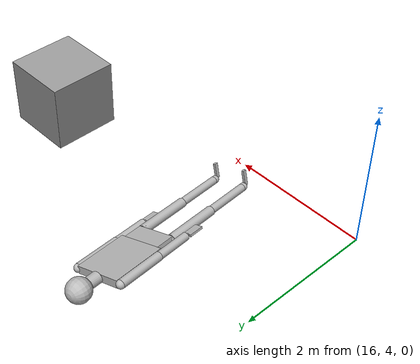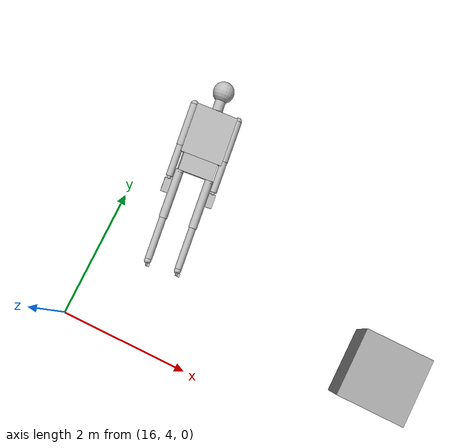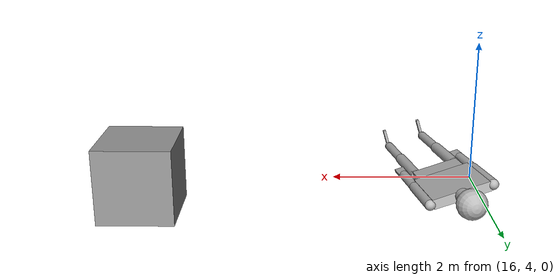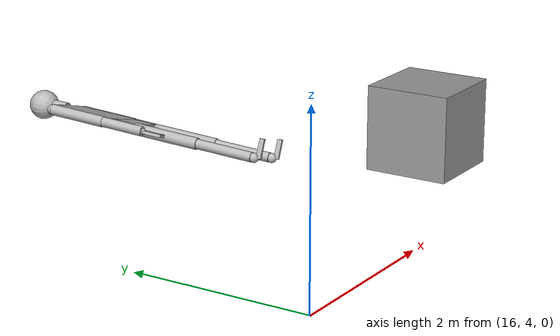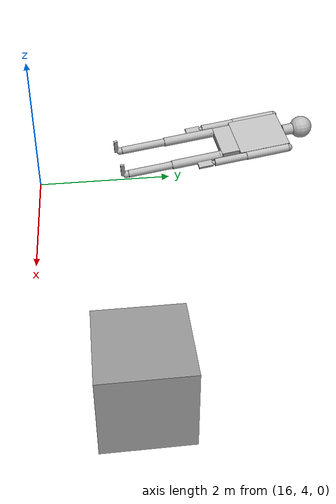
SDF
<sdf version="1.7">
 <world name="world_demo">
  <model name="ground_plane">
   <static>1</static>
   <link name="link">
    <collision name="collision">
     <geometry><plane><normal>0 0 1</normal><size>1 1</size></plane></geometry>
    </collision>
    <inertial>
     <mass>1</mass>
     <inertia><ixx>1</ixx><ixy>0</ixy><ixz>0</ixz><iyy>1</iyy><iyz>0</iyz><izz>1</izz></inertia>
    </inertial>
   </link>
  </model>
  <model name="unit_box_3">
   <pose>20.5574 5.20717 0.49907 -0.0001 -0 -1e-06</pose>
   <link name="link">
    <inertial>
     <mass>1</mass>
     <inertia>
      <ixx>0.166667</ixx>
      <ixy>0</ixy>
      <ixz>0</ixz>
      <iyy>0.166667</iyy>
      <iyz>0</iyz>
      <izz>0.166667</izz>
     </inertia>
    </inertial>
    <collision name="collision"><geometry><box><size>1 1 1</size></box></geometry></collision>
    <visual name="visual">
     <geometry><box><size>1 1 1</size></box></geometry>
     <material>
      <script><name>Gazebo/Grey</name><uri>file://media/materials/scripts/gazebo.material</uri></script>
     </material>
    </visual>
   </link>
  </model>
  <model name="ragdoll_clone_0">
   <pose>16.9861 6.55505 1.11326 -1.25694 -1.2719 -0.184158</pose>
   <link name="hip">
    <inertial>
     <inertia><ixx>0.1</ixx><ixy>0</ixy><ixz>0</ixz><iyy>0.1</iyy><iyz>0</iyz><izz>0.1</izz></inertia>
     <mass>10</mass>
    </inertial>
    <collision name="hip_geom">
     <pose>0 0 0.125 0 -0 0</pose>
     <geometry><box><size>0.1 0.5 0.25</size></box></geometry>
     <surface>
      <friction><ode><mu>-1</mu><mu2>-1</mu2><fdir1>0 0 0</fdir1><slip1>0</slip1><slip2>0</slip2></ode></friction>
      <bounce><restitution_coefficient>0</restitution_coefficient><threshold>100000</threshold></bounce>
      <contact>
       <ode>
        <soft_cfm>0</soft_cfm>
        <soft_erp>0.2</soft_erp>
        <kp>1e+12</kp>
        <kd>1</kd>
        <max_vel>0</max_vel>
        <min_depth>0.001</min_depth>
       </ode>
      </contact>
     </surface>
    </collision>
    <visual name="hip_geom_visual">
     <pose>0 0 0.125 0 -0 0</pose>
     <geometry><box><size>0.1 0.5 0.25</size></box></geometry>
    </visual>
    <gravity>0</gravity>
   </link>
   <link name="l_thigh_pan">
    <pose>0 0.22 0 0 -0 0</pose>
    <inertial>
     <inertia><ixx>0.01</ixx><ixy>0</ixy><ixz>0</ixz><iyy>0.01</iyy><iyz>0</iyz><izz>0.01</izz></inertia>
     <mass>1</mass>
    </inertial>
    <collision name="l_thigh_pan_geom">
     <pose>0 0 -0.03 0 -0 0</pose>
     <geometry><sphere><radius>0.06</radius></sphere></geometry>
     <surface>
      <friction><ode><mu>-1</mu><mu2>-1</mu2><fdir1>0 0 0</fdir1><slip1>0</slip1><slip2>0</slip2></ode></friction>
      <bounce><restitution_coefficient>0</restitution_coefficient><threshold>100000</threshold></bounce>
      <contact>
       <ode>
        <soft_cfm>0</soft_cfm>
        <soft_erp>0.2</soft_erp>
        <kp>1e+12</kp>
        <kd>1</kd>
        <max_vel>0</max_vel>
        <min_depth>0.001</min_depth>
       </ode>
      </contact>
     </surface>
    </collision>
    <visual name="l_thigh_pan_geom_visual">
     <pose>0 0 -0.03 0 -0 0</pose>
     <geometry><sphere><radius>0.06</radius></sphere></geometry>
    </visual>
    <gravity>0</gravity>
   </link>
   <link name="l_thigh_lift">
    <pose>0 0.22 0 0 -0 0</pose>
    <inertial>
     <inertia><ixx>0.05</ixx><ixy>0</ixy><ixz>0</ixz><iyy>0.05</iyy><iyz>0</iyz><izz>0.05</izz></inertia>
     <mass>5</mass>
    </inertial>
    <collision name="l_thigh_lift_geom">
     <pose>0 0 -0.35 0 -0 0</pose>
     <geometry><cylinder><radius>0.06</radius><length>0.7</length></cylinder></geometry>
     <surface>
      <friction><ode><mu>-1</mu><mu2>-1</mu2><fdir1>0 0 0</fdir1><slip1>0</slip1><slip2>0</slip2></ode></friction>
      <bounce><restitution_coefficient>0</restitution_coefficient><threshold>100000</threshold></bounce>
      <contact>
       <ode>
        <soft_cfm>0</soft_cfm>
        <soft_erp>0.2</soft_erp>
        <kp>1e+12</kp>
        <kd>1</kd>
        <max_vel>0</max_vel>
        <min_depth>0.001</min_depth>
       </ode>
      </contact>
     </surface>
    </collision>
    <visual name="l_thigh_lift_geom_visual">
     <pose>0 0 -0.35 0 -0 0</pose>
     <geometry><cylinder><radius>0.06</radius><length>0.7</length></cylinder></geometry>
    </visual>
    <gravity>0</gravity>
   </link>
   <link name="l_calf">
    <pose>0 0.22 -0.7 0 -0 0</pose>
    <inertial>
     <inertia><ixx>0.02</ixx><ixy>0</ixy><ixz>0</ixz><iyy>0.02</iyy><iyz>0</iyz><izz>0.02</izz></inertia>
     <mass>2</mass>
    </inertial>
    <collision name="l_calf_geom">
     <pose>0 0 -0.3 0 -0 0</pose>
     <geometry><cylinder><radius>0.05</radius><length>0.6</length></cylinder></geometry>
     <surface>
      <friction><ode><mu>-1</mu><mu2>-1</mu2><fdir1>0 0 0</fdir1><slip1>0</slip1><slip2>0</slip2></ode></friction>
      <bounce><restitution_coefficient>0</restitution_coefficient><threshold>100000</threshold></bounce>
      <contact>
       <ode>
        <soft_cfm>0</soft_cfm>
        <soft_erp>0.2</soft_erp>
        <kp>1e+12</kp>
        <kd>1</kd>
        <max_vel>0</max_vel>
        <min_depth>0.001</min_depth>
       </ode>
      </contact>
     </surface>
    </collision>
    <visual name="l_calf_geom_visual">
     <pose>0 0 -0.3 0 -0 0</pose>
     <geometry><cylinder><radius>0.05</radius><length>0.6</length></cylinder></geometry>
    </visual>
    <gravity>0</gravity>
   </link>
   <link name="l_ankle">
    <pose>0 0.22 -1.325 0 -0 0</pose>
    <inertial>
     <inertia><ixx>0.01</ixx><ixy>0</ixy><ixz>0</ixz><iyy>0.01</iyy><iyz>0</iyz><izz>0.01</izz></inertia>
     <mass>1</mass>
    </inertial>
    <collision name="l_ankle_geom">
     <geometry><sphere><radius>0.05</radius></sphere></geometry>
     <surface>
      <friction><ode><mu>-1</mu><mu2>-1</mu2><fdir1>0 0 0</fdir1><slip1>0</slip1><slip2>0</slip2></ode></friction>
      <bounce><restitution_coefficient>0</restitution_coefficient><threshold>100000</threshold></bounce>
      <contact>
       <ode>
        <soft_cfm>0</soft_cfm>
        <soft_erp>0.2</soft_erp>
        <kp>1e+12</kp>
        <kd>1</kd>
        <max_vel>0</max_vel>
        <min_depth>0.001</min_depth>
       </ode>
      </contact>
     </surface>
    </collision>
    <visual name="l_ankle_geom_visual"><geometry><sphere><radius>0.05</radius></sphere></geometry></visual>
    <gravity>0</gravity>
   </link>
   <link name="l_foot">
    <pose>0 0.22 -1.35 0 -0 0</pose>
    <inertial>
     <pose>0.1 0 0 0 -0 0</pose>
     <inertia><ixx>0.01</ixx><ixy>0</ixy><ixz>0</ixz><iyy>0.01</iyy><iyz>0</iyz><izz>0.01</izz></inertia>
     <mass>1</mass>
    </inertial>
    <collision name="l_foot_geom">
     <pose>0.1 0 -0.025 0 -0 0</pose>
     <geometry><box><size>0.2 0.03 0.05</size></box></geometry>
     <surface>
      <friction><ode><mu>-1</mu><mu2>-1</mu2><fdir1>0 0 0</fdir1><slip1>0</slip1><slip2>0</slip2></ode></friction>
      <bounce><restitution_coefficient>0</restitution_coefficient><threshold>100000</threshold></bounce>
      <contact>
       <ode>
        <soft_cfm>0</soft_cfm>
        <soft_erp>0.2</soft_erp>
        <kp>1e+12</kp>
        <kd>1</kd>
        <max_vel>0</max_vel>
        <min_depth>0.001</min_depth>
       </ode>
      </contact>
     </surface>
    </collision>
    <visual name="l_foot_geom_visual">
     <pose>0.1 0 -0.025 0 -0 0</pose>
     <geometry><box><size>0.2 0.03 0.05</size></box></geometry>
    </visual>
   </link>
   <link name="r_thigh_pan">
    <pose>0 -0.22 0 0 -0 0</pose>
    <inertial>
     <inertia><ixx>0.01</ixx><ixy>0</ixy><ixz>0</ixz><iyy>0.01</iyy><iyz>0</iyz><izz>0.01</izz></inertia>
     <mass>1</mass>
    </inertial>
    <collision name="r_thigh_pan_geom">
     <pose>0 0 -0.03 0 -0 0</pose>
     <geometry><sphere><radius>0.06</radius></sphere></geometry>
     <surface>
      <friction><ode><mu>-1</mu><mu2>-1</mu2><fdir1>0 0 0</fdir1><slip1>0</slip1><slip2>0</slip2></ode></friction>
      <bounce><restitution_coefficient>0</restitution_coefficient><threshold>100000</threshold></bounce>
      <contact>
       <ode>
        <soft_cfm>0</soft_cfm>
        <soft_erp>0.2</soft_erp>
        <kp>1e+12</kp>
        <kd>1</kd>
        <max_vel>0</max_vel>
        <min_depth>0.001</min_depth>
       </ode>
      </contact>
     </surface>
    </collision>
    <visual name="r_thigh_pan_geom_visual">
     <pose>0 0 -0.03 0 -0 0</pose>
     <geometry><sphere><radius>0.06</radius></sphere></geometry>
    </visual>
    <gravity>0</gravity>
   </link>
   <link name="r_thigh_lift">
    <pose>0 -0.22 0 0 -0 0</pose>
    <inertial>
     <inertia><ixx>0.05</ixx><ixy>0</ixy><ixz>0</ixz><iyy>0.05</iyy><iyz>0</iyz><izz>0.05</izz></inertia>
     <mass>5</mass>
    </inertial>
    <collision name="r_thigh_lift_geom">
     <pose>0 0 -0.35 0 -0 0</pose>
     <geometry><cylinder><radius>0.06</radius><length>0.7</length></cylinder></geometry>
     <surface>
      <friction><ode><mu>-1</mu><mu2>-1</mu2><fdir1>0 0 0</fdir1><slip1>0</slip1><slip2>0</slip2></ode></friction>
      <bounce><restitution_coefficient>0</restitution_coefficient><threshold>100000</threshold></bounce>
      <contact>
       <ode>
        <soft_cfm>0</soft_cfm>
        <soft_erp>0.2</soft_erp>
        <kp>1e+12</kp>
        <kd>1</kd>
        <max_vel>0</max_vel>
        <min_depth>0.001</min_depth>
       </ode>
      </contact>
     </surface>
    </collision>
    <visual name="r_thigh_lift_geom_visual">
     <pose>0 0 -0.35 0 -0 0</pose>
     <geometry><cylinder><radius>0.06</radius><length>0.7</length></cylinder></geometry>
    </visual>
    <gravity>0</gravity>
   </link>
   <link name="r_calf">
    <pose>0 -0.22 -0.7 0 -0 0</pose>
    <inertial>
     <inertia><ixx>0.02</ixx><ixy>0</ixy><ixz>0</ixz><iyy>0.02</iyy><iyz>0</iyz><izz>0.02</izz></inertia>
     <mass>2</mass>
    </inertial>
    <collision name="r_calf_geom">
     <pose>0 0 -0.3 0 -0 0</pose>
     <geometry><cylinder><radius>0.05</radius><length>0.6</length></cylinder></geometry>
     <surface>
      <friction><ode><mu>-1</mu><mu2>-1</mu2><fdir1>0 0 0</fdir1><slip1>0</slip1><slip2>0</slip2></ode></friction>
      <bounce><restitution_coefficient>0</restitution_coefficient><threshold>100000</threshold></bounce>
      <contact>
       <ode>
        <soft_cfm>0</soft_cfm>
        <soft_erp>0.2</soft_erp>
        <kp>1e+12</kp>
        <kd>1</kd>
        <max_vel>0</max_vel>
        <min_depth>0.001</min_depth>
       </ode>
      </contact>
     </surface>
    </collision>
    <visual name="r_calf_geom_visual">
     <pose>0 0 -0.3 0 -0 0</pose>
     <geometry><cylinder><radius>0.05</radius><length>0.6</length></cylinder></geometry>
    </visual>
    <gravity>0</gravity>
   </link>
   <link name="r_ankle">
    <pose>0 -0.22 -1.325 0 -0 0</pose>
    <inertial>
     <inertia><ixx>0.01</ixx><ixy>0</ixy><ixz>0</ixz><iyy>0.01</iyy><iyz>0</iyz><izz>0.01</izz></inertia>
     <mass>1</mass>
    </inertial>
    <collision name="r_ankle_geom">
     <geometry><sphere><radius>0.05</radius></sphere></geometry>
     <surface>
      <friction><ode><mu>-1</mu><mu2>-1</mu2><fdir1>0 0 0</fdir1><slip1>0</slip1><slip2>0</slip2></ode></friction>
      <bounce><restitution_coefficient>0</restitution_coefficient><threshold>100000</threshold></bounce>
      <contact>
       <ode>
        <soft_cfm>0</soft_cfm>
        <soft_erp>0.2</soft_erp>
        <kp>1e+12</kp>
        <kd>1</kd>
        <max_vel>0</max_vel>
        <min_depth>0.001</min_depth>
       </ode>
      </contact>
     </surface>
    </collision>
    <visual name="r_ankle_geom_visual"><geometry><sphere><radius>0.05</radius></sphere></geometry></visual>
    <gravity>0</gravity>
   </link>
   <link name="r_foot">
    <pose>0 -0.22 -1.35 0 -0 0</pose>
    <inertial>
     <pose>0.1 0 0 0 -0 0</pose>
     <inertia><ixx>0.01</ixx><ixy>0</ixy><ixz>0</ixz><iyy>0.01</iyy><iyz>0</iyz><izz>0.01</izz></inertia>
     <mass>1</mass>
    </inertial>
    <collision name="r_foot_geom">
     <pose>0.1 0 -0.025 0 -0 0</pose>
     <geometry><box><size>0.2 0.03 0.05</size></box></geometry>
     <surface>
      <friction><ode><mu>-1</mu><mu2>-1</mu2><fdir1>0 0 0</fdir1><slip1>0</slip1><slip2>0</slip2></ode></friction>
      <bounce><restitution_coefficient>0</restitution_coefficient><threshold>100000</threshold></bounce>
      <contact>
       <ode>
        <soft_cfm>0</soft_cfm>
        <soft_erp>0.2</soft_erp>
        <kp>1e+12</kp>
        <kd>1</kd>
        <max_vel>0</max_vel>
        <min_depth>0.001</min_depth>
       </ode>
      </contact>
     </surface>
    </collision>
    <visual name="r_foot_geom_visual">
     <pose>0.1 0 -0.025 0 -0 0</pose>
     <geometry><box><size>0.2 0.03 0.05</size></box></geometry>
    </visual>
   </link>
   <link name="torso">
    <pose>0 0 0.25 0 -0 0</pose>
    <inertial>
     <inertia><ixx>0.3</ixx><ixy>0</ixy><ixz>0</ixz><iyy>0.3</iyy><iyz>0</iyz><izz>0.3</izz></inertia>
     <mass>30</mass>
    </inertial>
    <collision name="torso_geom">
     <pose>0 0 0.35 0 -0 0</pose>
     <geometry><box><size>0.1 0.6 0.7</size></box></geometry>
     <surface>
      <friction><ode><mu>-1</mu><mu2>-1</mu2><fdir1>0 0 0</fdir1><slip1>0</slip1><slip2>0</slip2></ode></friction>
      <bounce><restitution_coefficient>0</restitution_coefficient><threshold>100000</threshold></bounce>
      <contact>
       <ode>
        <soft_cfm>0</soft_cfm>
        <soft_erp>0.2</soft_erp>
        <kp>1e+12</kp>
        <kd>1</kd>
        <max_vel>0</max_vel>
        <min_depth>0.001</min_depth>
       </ode>
      </contact>
     </surface>
    </collision>
    <visual name="torso_geom_visual">
     <pose>0 0 0.35 0 -0 0</pose>
     <geometry><box><size>0.1 0.6 0.7</size></box></geometry>
    </visual>
    <gravity>0</gravity>
   </link>
   <link name="l_shoulder">
    <pose>0 0.3275 0.9225 0 -0 0</pose>
    <inertial>
     <inertia><ixx>0.01</ixx><ixy>0</ixy><ixz>0</ixz><iyy>0.01</iyy><iyz>0</iyz><izz>0.01</izz></inertia>
     <mass>1</mass>
    </inertial>
    <collision name="l_shoulder_geom">
     <geometry><sphere><radius>0.055</radius></sphere></geometry>
     <surface>
      <friction><ode><mu>-1</mu><mu2>-1</mu2><fdir1>0 0 0</fdir1><slip1>0</slip1><slip2>0</slip2></ode></friction>
      <bounce><restitution_coefficient>0</restitution_coefficient><threshold>100000</threshold></bounce>
      <contact>
       <ode>
        <soft_cfm>0</soft_cfm>
        <soft_erp>0.2</soft_erp>
        <kp>1e+12</kp>
        <kd>1</kd>
        <max_vel>0</max_vel>
        <min_depth>0.001</min_depth>
       </ode>
      </contact>
     </surface>
    </collision>
    <visual name="l_shoulder_geom_visual"><geometry><sphere><radius>0.055</radius></sphere></geometry></visual>
    <gravity>0</gravity>
   </link>
   <link name="l_upper_arm">
    <pose>0 0.3275 0.9225 0 -0 0</pose>
    <inertial>
     <inertia><ixx>0.02</ixx><ixy>0</ixy><ixz>0</ixz><iyy>0.02</iyy><iyz>0</iyz><izz>0.02</izz></inertia>
     <mass>2</mass>
    </inertial>
    <collision name="l_upper_arm_geom">
     <pose>0 0 -0.3 0 -0 0</pose>
     <geometry><cylinder><radius>0.055</radius><length>0.6</length></cylinder></geometry>
     <surface>
      <friction><ode><mu>-1</mu><mu2>-1</mu2><fdir1>0 0 0</fdir1><slip1>0</slip1><slip2>0</slip2></ode></friction>
      <bounce><restitution_coefficient>0</restitution_coefficient><threshold>100000</threshold></bounce>
      <contact>
       <ode>
        <soft_cfm>0</soft_cfm>
        <soft_erp>0.2</soft_erp>
        <kp>1e+12</kp>
        <kd>1</kd>
        <max_vel>0</max_vel>
        <min_depth>0.001</min_depth>
       </ode>
      </contact>
     </surface>
    </collision>
    <visual name="l_upper_arm_geom_visual">
     <pose>0 0 -0.3 0 -0 0</pose>
     <geometry><cylinder><radius>0.055</radius><length>0.6</length></cylinder></geometry>
    </visual>
    <gravity>0</gravity>
   </link>
   <link name="l_forearm">
    <pose>0 0.3275 0.3225 0 -0 0</pose>
    <inertial>
     <inertia><ixx>0.01</ixx><ixy>0</ixy><ixz>0</ixz><iyy>0.01</iyy><iyz>0</iyz><izz>0.01</izz></inertia>
     <mass>1</mass>
    </inertial>
    <collision name="l_forearm_geom">
     <pose>0 0 -0.225 0 -0 0</pose>
     <geometry><cylinder><radius>0.05</radius><length>0.45</length></cylinder></geometry>
     <surface>
      <friction><ode><mu>-1</mu><mu2>-1</mu2><fdir1>0 0 0</fdir1><slip1>0</slip1><slip2>0</slip2></ode></friction>
      <bounce><restitution_coefficient>0</restitution_coefficient><threshold>100000</threshold></bounce>
      <contact>
       <ode>
        <soft_cfm>0</soft_cfm>
        <soft_erp>0.2</soft_erp>
        <kp>1e+12</kp>
        <kd>1</kd>
        <max_vel>0</max_vel>
        <min_depth>0.001</min_depth>
       </ode>
      </contact>
     </surface>
    </collision>
    <visual name="l_forearm_geom_visual">
     <pose>0 0 -0.225 0 -0 0</pose>
     <geometry><cylinder><radius>0.05</radius><length>0.45</length></cylinder></geometry>
    </visual>
    <gravity>0</gravity>
   </link>
   <link name="l_wrist">
    <pose>0 0.3275 -0.1425 0 -0 0</pose>
    <inertial>
     <inertia><ixx>0.01</ixx><ixy>0</ixy><ixz>0</ixz><iyy>0.01</iyy><iyz>0</iyz><izz>0.01</izz></inertia>
     <mass>1</mass>
    </inertial>
    <collision name="l_wrist_geom">
     <geometry><sphere><radius>0.03</radius></sphere></geometry>
     <surface>
      <friction><ode><mu>-1</mu><mu2>-1</mu2><fdir1>0 0 0</fdir1><slip1>0</slip1><slip2>0</slip2></ode></friction>
      <bounce><restitution_coefficient>0</restitution_coefficient><threshold>100000</threshold></bounce>
      <contact>
       <ode>
        <soft_cfm>0</soft_cfm>
        <soft_erp>0.2</soft_erp>
        <kp>1e+12</kp>
        <kd>1</kd>
        <max_vel>0</max_vel>
        <min_depth>0.001</min_depth>
       </ode>
      </contact>
     </surface>
    </collision>
    <visual name="l_wrist_geom_visual"><geometry><sphere><radius>0.03</radius></sphere></geometry></visual>
    <gravity>0</gravity>
   </link>
   <link name="l_hand">
    <pose>0 0.3275 -0.1575 0 -0 0</pose>
    <inertial>
     <inertia><ixx>0.01</ixx><ixy>0</ixy><ixz>0</ixz><iyy>0.01</iyy><iyz>0</iyz><izz>0.01</izz></inertia>
     <mass>1</mass>
    </inertial>
    <collision name="l_hand_geom">
     <pose>0 0 -0.1 0 -0 0</pose>
     <geometry><box><size>0.03 0.1 0.2</size></box></geometry>
     <surface>
      <friction><ode><mu>-1</mu><mu2>-1</mu2><fdir1>0 0 0</fdir1><slip1>0</slip1><slip2>0</slip2></ode></friction>
      <bounce><restitution_coefficient>0</restitution_coefficient><threshold>100000</threshold></bounce>
      <contact>
       <ode>
        <soft_cfm>0</soft_cfm>
        <soft_erp>0.2</soft_erp>
        <kp>1e+12</kp>
        <kd>1</kd>
        <max_vel>0</max_vel>
        <min_depth>0.001</min_depth>
       </ode>
      </contact>
     </surface>
    </collision>
    <visual name="l_hand_geom_visual">
     <pose>0 0 -0.1 0 -0 0</pose>
     <geometry><box><size>0.03 0.1 0.2</size></box></geometry>
    </visual>
    <gravity>0</gravity>
   </link>
   <link name="neck">
    <pose>0 0 0.95 0 -0 0</pose>
    <inertial>
     <inertia><ixx>0.01</ixx><ixy>0</ixy><ixz>0</ixz><iyy>0.01</iyy><iyz>0</iyz><izz>0.01</izz></inertia>
     <mass>1</mass>
    </inertial>
    <collision name="neck_geom">
     <pose>0 0 0.1 0 -0 0</pose>
     <geometry><cylinder><radius>0.075</radius><length>0.2</length></cylinder></geometry>
     <surface>
      <friction><ode><mu>-1</mu><mu2>-1</mu2><fdir1>0 0 0</fdir1><slip1>0</slip1><slip2>0</slip2></ode></friction>
      <bounce><restitution_coefficient>0</restitution_coefficient><threshold>100000</threshold></bounce>
      <contact>
       <ode>
        <soft_cfm>0</soft_cfm>
        <soft_erp>0.2</soft_erp>
        <kp>1e+12</kp>
        <kd>1</kd>
        <max_vel>0</max_vel>
        <min_depth>0.001</min_depth>
       </ode>
      </contact>
     </surface>
    </collision>
    <visual name="neck_geom_visual">
     <pose>0 0 0.1 0 -0 0</pose>
     <geometry><cylinder><radius>0.075</radius><length>0.2</length></cylinder></geometry>
    </visual>
    <gravity>0</gravity>
   </link>
   <link name="head">
    <pose>0 0 1.225 0 -0 0</pose>
    <inertial>
     <inertia><ixx>0.1</ixx><ixy>0</ixy><ixz>0</ixz><iyy>0.1</iyy><iyz>0</iyz><izz>0.1</izz></inertia>
     <mass>10</mass>
    </inertial>
    <collision name="head_geom">
     <geometry><sphere><radius>0.15</radius></sphere></geometry>
     <surface>
      <friction><ode><mu>-1</mu><mu2>-1</mu2><fdir1>0 0 0</fdir1><slip1>0</slip1><slip2>0</slip2></ode></friction>
      <bounce><restitution_coefficient>0</restitution_coefficient><threshold>100000</threshold></bounce>
      <contact>
       <ode>
        <soft_cfm>0</soft_cfm>
        <soft_erp>0.2</soft_erp>
        <kp>1e+12</kp>
        <kd>1</kd>
        <max_vel>0</max_vel>
        <min_depth>0.001</min_depth>
       </ode>
      </contact>
     </surface>
    </collision>
    <visual name="head_geom_visual"><geometry><sphere><radius>0.15</radius></sphere></geometry></visual>
    <gravity>0</gravity>
   </link>
   <link name="r_shoulder">
    <pose>0 -0.3275 0.9225 0 -0 0</pose>
    <inertial>
     <inertia><ixx>0.01</ixx><ixy>0</ixy><ixz>0</ixz><iyy>0.01</iyy><iyz>0</iyz><izz>0.01</izz></inertia>
     <mass>1</mass>
    </inertial>
    <collision name="r_shoulder_geom">
     <geometry><sphere><radius>0.055</radius></sphere></geometry>
     <surface>
      <friction><ode><mu>-1</mu><mu2>-1</mu2><fdir1>0 0 0</fdir1><slip1>0</slip1><slip2>0</slip2></ode></friction>
      <bounce><restitution_coefficient>0</restitution_coefficient><threshold>100000</threshold></bounce>
      <contact>
       <ode>
        <soft_cfm>0</soft_cfm>
        <soft_erp>0.2</soft_erp>
        <kp>1e+12</kp>
        <kd>1</kd>
        <max_vel>0</max_vel>
        <min_depth>0.001</min_depth>
       </ode>
      </contact>
     </surface>
    </collision>
    <visual name="r_shoulder_geom_visual"><geometry><sphere><radius>0.055</radius></sphere></geometry></visual>
    <gravity>0</gravity>
   </link>
   <link name="r_upper_arm">
    <pose>0 -0.3275 0.9225 0 -0 0</pose>
    <inertial>
     <inertia><ixx>0.02</ixx><ixy>0</ixy><ixz>0</ixz><iyy>0.02</iyy><iyz>0</iyz><izz>0.02</izz></inertia>
     <mass>2</mass>
    </inertial>
    <collision name="r_upper_arm_geom">
     <pose>0 0 -0.3 0 -0 0</pose>
     <geometry><cylinder><radius>0.055</radius><length>0.6</length></cylinder></geometry>
     <surface>
      <friction><ode><mu>-1</mu><mu2>-1</mu2><fdir1>0 0 0</fdir1><slip1>0</slip1><slip2>0</slip2></ode></friction>
      <bounce><restitution_coefficient>0</restitution_coefficient><threshold>100000</threshold></bounce>
      <contact>
       <ode>
        <soft_cfm>0</soft_cfm>
        <soft_erp>0.2</soft_erp>
        <kp>1e+12</kp>
        <kd>1</kd>
        <max_vel>0</max_vel>
        <min_depth>0.001</min_depth>
       </ode>
      </contact>
     </surface>
    </collision>
    <visual name="r_upper_arm_geom_visual">
     <pose>0 0 -0.3 0 -0 0</pose>
     <geometry><cylinder><radius>0.055</radius><length>0.6</length></cylinder></geometry>
    </visual>
    <gravity>0</gravity>
   </link>
   <link name="r_forearm">
    <pose>0 -0.3275 0.3225 0 -0 0</pose>
    <inertial>
     <inertia><ixx>0.01</ixx><ixy>0</ixy><ixz>0</ixz><iyy>0.01</iyy><iyz>0</iyz><izz>0.01</izz></inertia>
     <mass>1</mass>
    </inertial>
    <collision name="r_forearm_geom">
     <pose>0 0 -0.225 0 -0 0</pose>
     <geometry><cylinder><radius>0.05</radius><length>0.45</length></cylinder></geometry>
     <surface>
      <friction><ode><mu>-1</mu><mu2>-1</mu2><fdir1>0 0 0</fdir1><slip1>0</slip1><slip2>0</slip2></ode></friction>
      <bounce><restitution_coefficient>0</restitution_coefficient><threshold>100000</threshold></bounce>
      <contact>
       <ode>
        <soft_cfm>0</soft_cfm>
        <soft_erp>0.2</soft_erp>
        <kp>1e+12</kp>
        <kd>1</kd>
        <max_vel>0</max_vel>
        <min_depth>0.001</min_depth>
       </ode>
      </contact>
     </surface>
    </collision>
    <visual name="r_forearm_geom_visual">
     <pose>0 0 -0.225 0 -0 0</pose>
     <geometry><cylinder><radius>0.05</radius><length>0.45</length></cylinder></geometry>
    </visual>
    <gravity>0</gravity>
   </link>
   <link name="r_wrist">
    <pose>0 -0.3275 -0.1425 0 -0 0</pose>
    <inertial>
     <inertia><ixx>0.01</ixx><ixy>0</ixy><ixz>0</ixz><iyy>0.01</iyy><iyz>0</iyz><izz>0.01</izz></inertia>
     <mass>1</mass>
    </inertial>
    <collision name="r_wrist_geom">
     <geometry><sphere><radius>0.03</radius></sphere></geometry>
     <surface>
      <friction><ode><mu>-1</mu><mu2>-1</mu2><fdir1>0 0 0</fdir1><slip1>0</slip1><slip2>0</slip2></ode></friction>
      <bounce><restitution_coefficient>0</restitution_coefficient><threshold>100000</threshold></bounce>
      <contact>
       <ode>
        <soft_cfm>0</soft_cfm>
        <soft_erp>0.2</soft_erp>
        <kp>1e+12</kp>
        <kd>1</kd>
        <max_vel>0</max_vel>
        <min_depth>0.001</min_depth>
       </ode>
      </contact>
     </surface>
    </collision>
    <visual name="r_wrist_geom_visual"><geometry><sphere><radius>0.03</radius></sphere></geometry></visual>
    <gravity>0</gravity>
   </link>
   <link name="r_hand">
    <pose>0 -0.3275 -0.1575 0 -0 0</pose>
    <inertial>
     <inertia><ixx>0.01</ixx><ixy>0</ixy><ixz>0</ixz><iyy>0.01</iyy><iyz>0</iyz><izz>0.01</izz></inertia>
     <mass>1</mass>
    </inertial>
    <collision name="r_hand_geom">
     <pose>0 0 -0.1 0 -0 0</pose>
     <geometry><box><size>0.03 0.1 0.2</size></box></geometry>
     <surface>
      <friction><ode><mu>-1</mu><mu2>-1</mu2><fdir1>0 0 0</fdir1><slip1>0</slip1><slip2>0</slip2></ode></friction>
      <bounce><restitution_coefficient>0</restitution_coefficient><threshold>100000</threshold></bounce>
      <contact>
       <ode>
        <soft_cfm>0</soft_cfm>
        <soft_erp>0.2</soft_erp>
        <kp>1e+12</kp>
        <kd>1</kd>
        <max_vel>0</max_vel>
        <min_depth>0.001</min_depth>
       </ode>
      </contact>
     </surface>
    </collision>
    <visual name="r_hand_geom_visual">
     <pose>0 0 -0.1 0 -0 0</pose>
     <geometry><box><size>0.03 0.1 0.2</size></box></geometry>
    </visual>
    <gravity>0</gravity>
   </link>
   <joint name="l_thigh_pan_joint" type="revolute">
    <parent>hip</parent>
    <child>l_thigh_pan</child>
    <axis>
     <dynamics>
      <damping>0</damping>
      <friction>0</friction>
      <spring_reference>0</spring_reference>
      <spring_stiffness>0</spring_stiffness>
     </dynamics>
     <limit><lower>-1.5708</lower><upper>1.5708</upper><effort>0</effort><velocity>0</velocity></limit>
     <xyz expressed_in="__model__">0 0 1</xyz>
    </axis>
   </joint>
   <joint name="l_thigh_lift_joint" type="revolute">
    <parent>l_thigh_pan</parent>
    <child>l_thigh_lift</child>
    <axis>
     <dynamics>
      <damping>0</damping>
      <friction>0</friction>
      <spring_reference>0</spring_reference>
      <spring_stiffness>0</spring_stiffness>
     </dynamics>
     <limit><lower>-1.5708</lower><upper>1.5708</upper><effort>0</effort><velocity>0</velocity></limit>
     <xyz expressed_in="__model__">0 1 0</xyz>
    </axis>
   </joint>
   <joint name="l_calf_joint" type="revolute">
    <parent>l_thigh_lift</parent>
    <child>l_calf</child>
    <axis>
     <dynamics>
      <damping>0</damping>
      <friction>0</friction>
      <spring_reference>0</spring_reference>
      <spring_stiffness>0</spring_stiffness>
     </dynamics>
     <limit><lower>-1.5708</lower><upper>1.5708</upper><effort>0</effort><velocity>0</velocity></limit>
     <xyz expressed_in="__model__">0 1 0</xyz>
    </axis>
   </joint>
   <joint name="l_ankle_joint" type="revolute">
    <parent>l_calf</parent>
    <child>l_ankle</child>
    <axis>
     <dynamics>
      <damping>0</damping>
      <friction>0</friction>
      <spring_reference>0</spring_reference>
      <spring_stiffness>0</spring_stiffness>
     </dynamics>
     <limit><lower>-1.5708</lower><upper>1.5708</upper><effort>0</effort><velocity>0</velocity></limit>
     <xyz expressed_in="__model__">0 1 0</xyz>
    </axis>
   </joint>
   <joint name="l_foot_joint" type="revolute">
    <parent>l_ankle</parent>
    <child>l_foot</child>
    <axis>
     <dynamics>
      <damping>0</damping>
      <friction>0</friction>
      <spring_reference>0</spring_reference>
      <spring_stiffness>0</spring_stiffness>
     </dynamics>
     <limit><lower>-1.5708</lower><upper>1.5708</upper><effort>0</effort><velocity>0</velocity></limit>
     <xyz expressed_in="__model__">1 0 0</xyz>
    </axis>
   </joint>
   <joint name="r_thigh_pan_joint" type="revolute">
    <parent>hip</parent>
    <child>r_thigh_pan</child>
    <axis>
     <dynamics>
      <damping>0</damping>
      <friction>0</friction>
      <spring_reference>0</spring_reference>
      <spring_stiffness>0</spring_stiffness>
     </dynamics>
     <limit><lower>-1.5708</lower><upper>1.5708</upper><effort>0</effort><velocity>0</velocity></limit>
     <xyz expressed_in="__model__">0 0 1</xyz>
    </axis>
   </joint>
   <joint name="r_thigh_lift_joint" type="revolute">
    <parent>r_thigh_pan</parent>
    <child>r_thigh_lift</child>
    <axis>
     <dynamics>
      <damping>0</damping>
      <friction>0</friction>
      <spring_reference>0</spring_reference>
      <spring_stiffness>0</spring_stiffness>
     </dynamics>
     <limit><lower>-1.5708</lower><upper>1.5708</upper><effort>0</effort><velocity>0</velocity></limit>
     <xyz expressed_in="__model__">0 1 0</xyz>
    </axis>
   </joint>
   <joint name="r_calf_joint" type="revolute">
    <parent>r_thigh_lift</parent>
    <child>r_calf</child>
    <axis>
     <dynamics>
      <damping>0</damping>
      <friction>0</friction>
      <spring_reference>0</spring_reference>
      <spring_stiffness>0</spring_stiffness>
     </dynamics>
     <limit><lower>-1.5708</lower><upper>1.5708</upper><effort>0</effort><velocity>0</velocity></limit>
     <xyz expressed_in="__model__">0 1 0</xyz>
    </axis>
   </joint>
   <joint name="r_ankle_joint" type="revolute">
    <parent>r_calf</parent>
    <child>r_ankle</child>
    <axis>
     <dynamics>
      <damping>0</damping>
      <friction>0</friction>
      <spring_reference>0</spring_reference>
      <spring_stiffness>0</spring_stiffness>
     </dynamics>
     <limit><lower>-1.5708</lower><upper>1.5708</upper><effort>0</effort><velocity>0</velocity></limit>
     <xyz expressed_in="__model__">0 1 0</xyz>
    </axis>
   </joint>
   <joint name="r_foot_joint" type="revolute">
    <parent>r_ankle</parent>
    <child>r_foot</child>
    <axis>
     <dynamics>
      <damping>0</damping>
      <friction>0</friction>
      <spring_reference>0</spring_reference>
      <spring_stiffness>0</spring_stiffness>
     </dynamics>
     <limit><lower>-1.5708</lower><upper>1.5708</upper><effort>0</effort><velocity>0</velocity></limit>
     <xyz expressed_in="__model__">1 0 0</xyz>
    </axis>
   </joint>
   <joint name="torso_joint" type="revolute">
    <parent>hip</parent>
    <child>torso</child>
    <axis>
     <dynamics>
      <damping>0</damping>
      <friction>0</friction>
      <spring_reference>0</spring_reference>
      <spring_stiffness>0</spring_stiffness>
     </dynamics>
     <limit><lower>-1.5708</lower><upper>1.5708</upper><effort>0</effort><velocity>0</velocity></limit>
     <xyz expressed_in="__model__">0 1 0</xyz>
    </axis>
   </joint>
   <joint name="l_shoulder_joint" type="revolute">
    <parent>torso</parent>
    <child>l_shoulder</child>
    <axis>
     <dynamics>
      <damping>0</damping>
      <friction>0</friction>
      <spring_reference>0</spring_reference>
      <spring_stiffness>0</spring_stiffness>
     </dynamics>
     <limit><lower>-1.5708</lower><upper>1.5708</upper><effort>0</effort><velocity>0</velocity></limit>
     <xyz expressed_in="__model__">1 0 0</xyz>
    </axis>
   </joint>
   <joint name="l_upper_arm_joint" type="revolute">
    <parent>l_shoulder</parent>
    <child>l_upper_arm</child>
    <axis>
     <dynamics>
      <damping>0</damping>
      <friction>0</friction>
      <spring_reference>0</spring_reference>
      <spring_stiffness>0</spring_stiffness>
     </dynamics>
     <limit><lower>-1.5708</lower><upper>1.5708</upper><effort>0</effort><velocity>0</velocity></limit>
     <xyz expressed_in="__model__">0 1 0</xyz>
    </axis>
   </joint>
   <joint name="l_forearm_joint" type="revolute">
    <parent>l_upper_arm</parent>
    <child>l_forearm</child>
    <axis>
     <dynamics>
      <damping>0</damping>
      <friction>0</friction>
      <spring_reference>0</spring_reference>
      <spring_stiffness>0</spring_stiffness>
     </dynamics>
     <limit><lower>-1.5708</lower><upper>1.5708</upper><effort>0</effort><velocity>0</velocity></limit>
     <xyz expressed_in="__model__">0 1 0</xyz>
    </axis>
   </joint>
   <joint name="l_wrist_joint" type="revolute">
    <parent>l_forearm</parent>
    <child>l_wrist</child>
    <axis>
     <dynamics>
      <damping>0</damping>
      <friction>0</friction>
      <spring_reference>0</spring_reference>
      <spring_stiffness>0</spring_stiffness>
     </dynamics>
     <limit><lower>-1.5708</lower><upper>1.5708</upper><effort>0</effort><velocity>0</velocity></limit>
     <xyz expressed_in="__model__">0 1 0</xyz>
    </axis>
   </joint>
   <joint name="l_hand_joint" type="revolute">
    <parent>l_wrist</parent>
    <child>l_hand</child>
    <axis>
     <dynamics>
      <damping>0</damping>
      <friction>0</friction>
      <spring_reference>0</spring_reference>
      <spring_stiffness>0</spring_stiffness>
     </dynamics>
     <limit><lower>-1.5708</lower><upper>1.5708</upper><effort>0</effort><velocity>0</velocity></limit>
     <xyz expressed_in="__model__">0 1 0</xyz>
    </axis>
   </joint>
   <joint name="neck_joint" type="revolute">
    <parent>torso</parent>
    <child>neck</child>
    <axis>
     <dynamics>
      <damping>0</damping>
      <friction>0</friction>
      <spring_reference>0</spring_reference>
      <spring_stiffness>0</spring_stiffness>
     </dynamics>
     <limit><lower>-1.5708</lower><upper>1.5708</upper><effort>0</effort><velocity>0</velocity></limit>
     <xyz expressed_in="__model__">0 0 1</xyz>
    </axis>
   </joint>
   <joint name="head_joint" type="revolute">
    <parent>neck</parent>
    <child>head</child>
    <axis>
     <dynamics>
      <damping>0</damping>
      <friction>0</friction>
      <spring_reference>0</spring_reference>
      <spring_stiffness>0</spring_stiffness>
     </dynamics>
     <limit><lower>-1.5708</lower><upper>1.5708</upper><effort>0</effort><velocity>0</velocity></limit>
     <xyz expressed_in="__model__">0 1 0</xyz>
    </axis>
   </joint>
   <joint name="r_shoulder_joint" type="revolute">
    <parent>torso</parent>
    <child>r_shoulder</child>
    <axis>
     <dynamics>
      <damping>0</damping>
      <friction>0</friction>
      <spring_reference>0</spring_reference>
      <spring_stiffness>0</spring_stiffness>
     </dynamics>
     <limit><lower>-1.5708</lower><upper>1.5708</upper><effort>0</effort><velocity>0</velocity></limit>
     <xyz expressed_in="__model__">1 0 0</xyz>
    </axis>
   </joint>
   <joint name="r_upper_arm_joint" type="revolute">
    <parent>r_shoulder</parent>
    <child>r_upper_arm</child>
    <axis>
     <dynamics>
      <damping>0</damping>
      <friction>0</friction>
      <spring_reference>0</spring_reference>
      <spring_stiffness>0</spring_stiffness>
     </dynamics>
     <limit><lower>-1.5708</lower><upper>1.5708</upper><effort>0</effort><velocity>0</velocity></limit>
     <xyz expressed_in="__model__">0 1 0</xyz>
    </axis>
   </joint>
   <joint name="r_forearm_joint" type="revolute">
    <parent>r_upper_arm</parent>
    <child>r_forearm</child>
    <axis>
     <dynamics>
      <damping>0</damping>
      <friction>0</friction>
      <spring_reference>0</spring_reference>
      <spring_stiffness>0</spring_stiffness>
     </dynamics>
     <limit><lower>-1.5708</lower><upper>1.5708</upper><effort>0</effort><velocity>0</velocity></limit>
     <xyz expressed_in="__model__">0 1 0</xyz>
    </axis>
   </joint>
   <joint name="r_wrist_joint" type="revolute">
    <parent>r_forearm</parent>
    <child>r_wrist</child>
    <axis>
     <dynamics>
      <damping>0</damping>
      <friction>0</friction>
      <spring_reference>0</spring_reference>
      <spring_stiffness>0</spring_stiffness>
     </dynamics>
     <limit><lower>-1.5708</lower><upper>1.5708</upper><effort>0</effort><velocity>0</velocity></limit>
     <xyz expressed_in="__model__">0 1 0</xyz>
    </axis>
   </joint>
   <joint name="r_hand_joint" type="revolute">
    <parent>r_wrist</parent>
    <child>r_hand</child>
    <axis>
     <dynamics>
      <damping>0</damping>
      <friction>0</friction>
      <spring_reference>0</spring_reference>
      <spring_stiffness>0</spring_stiffness>
     </dynamics>
     <limit><lower>-1.5708</lower><upper>1.5708</upper><effort>0</effort><velocity>0</velocity></limit>
     <xyz expressed_in="__model__">0 1 0</xyz>
    </axis>
   </joint>
   <static>0</static>
  </model>
 </world>
</sdf>
